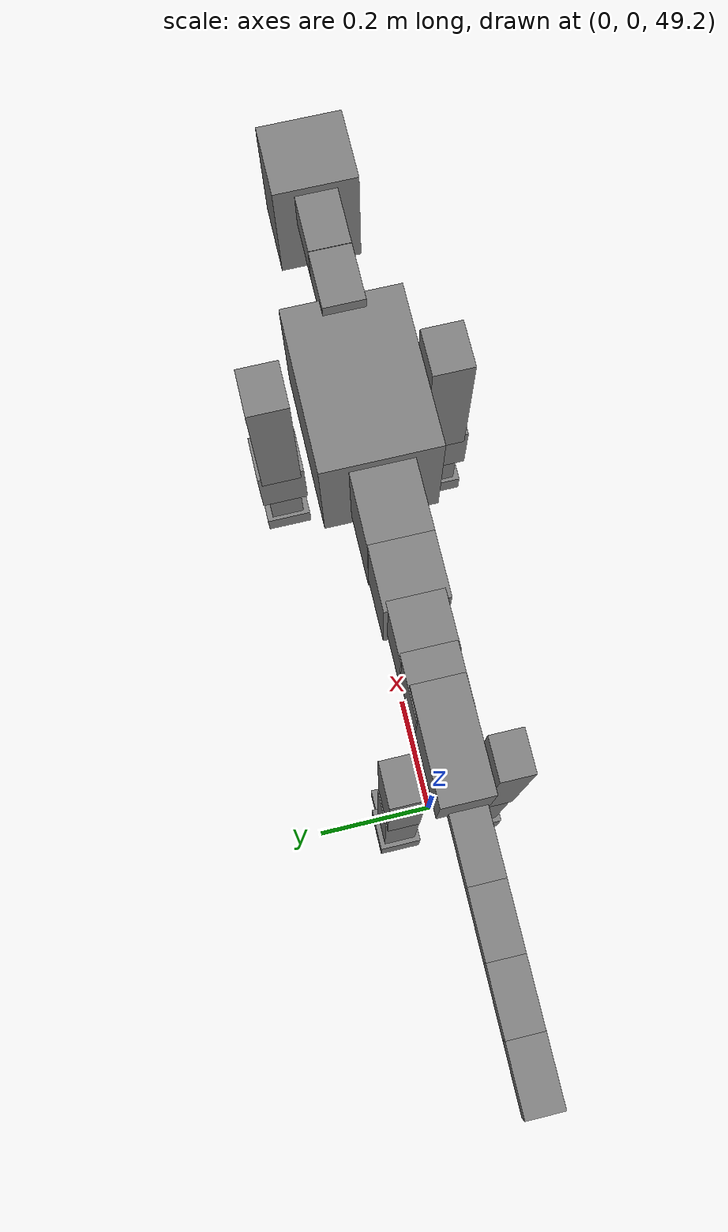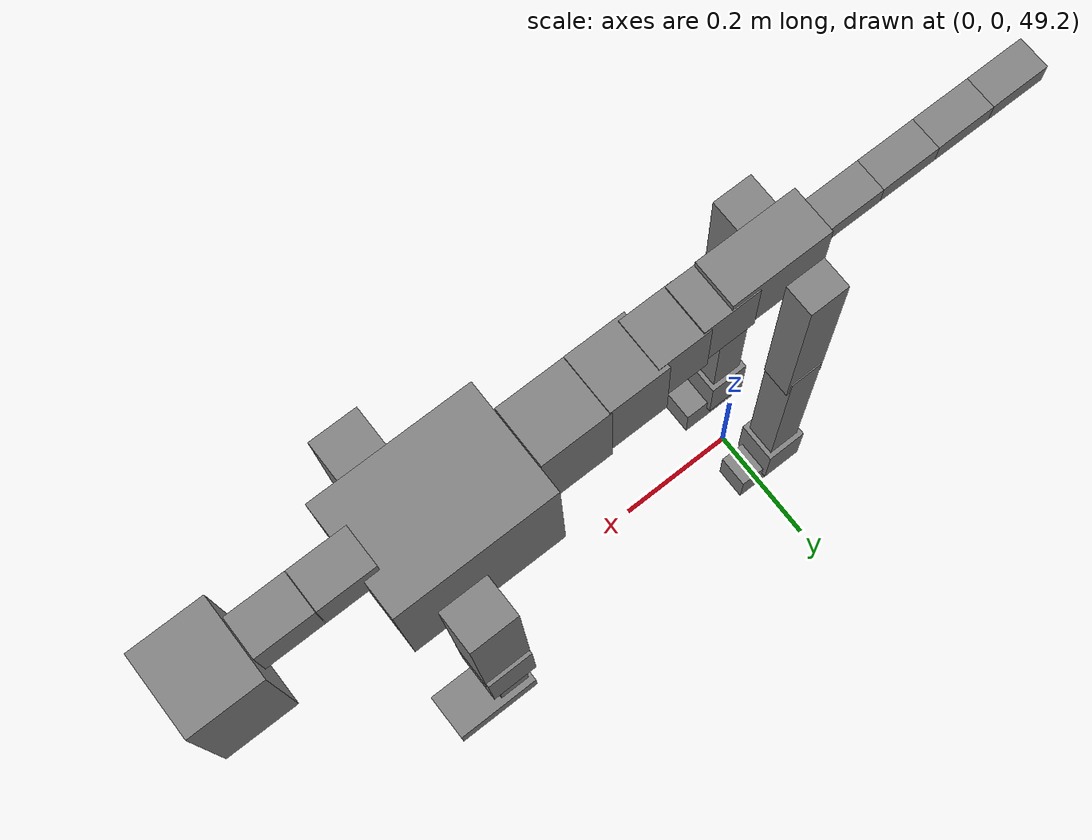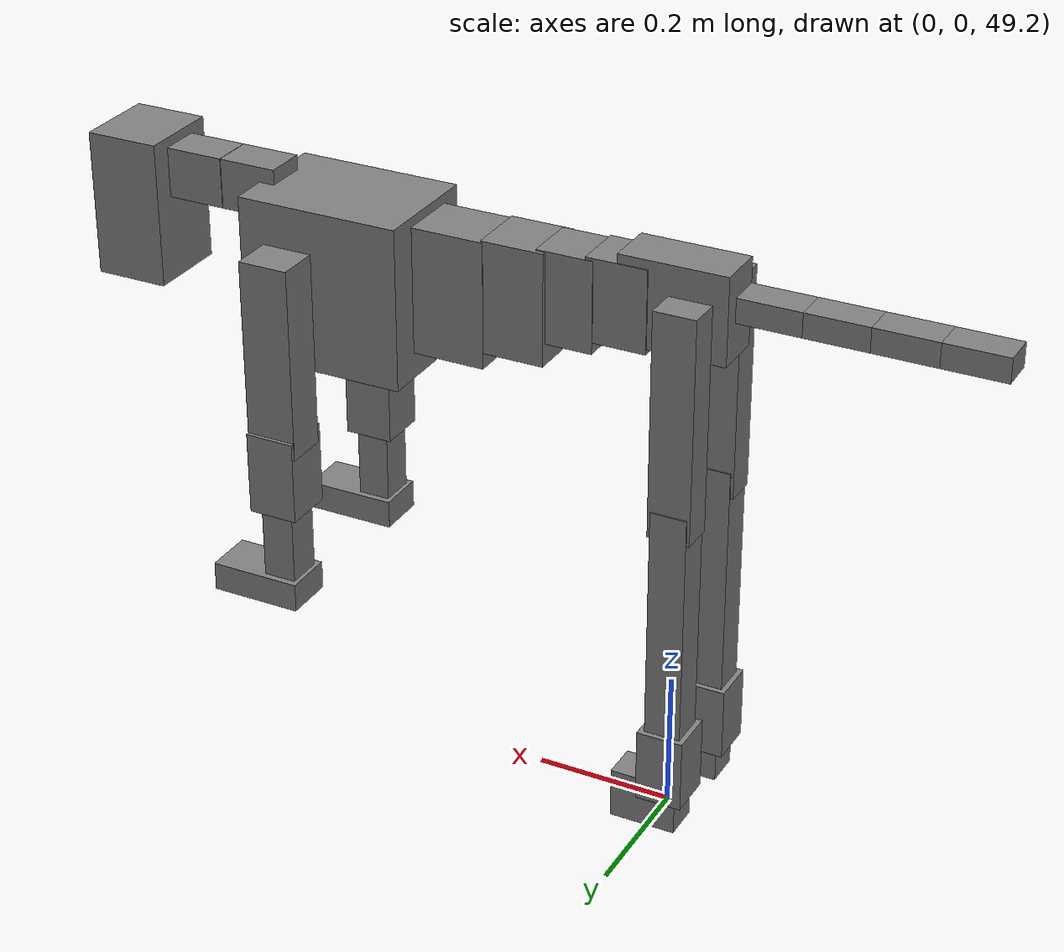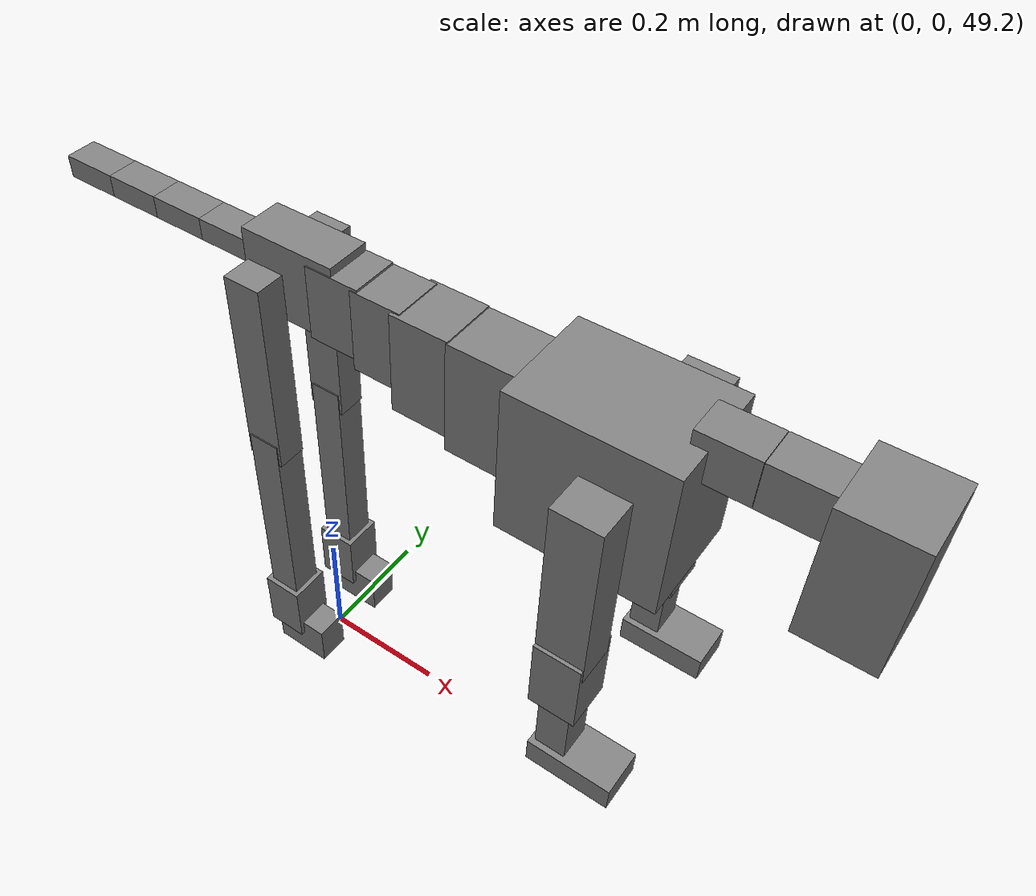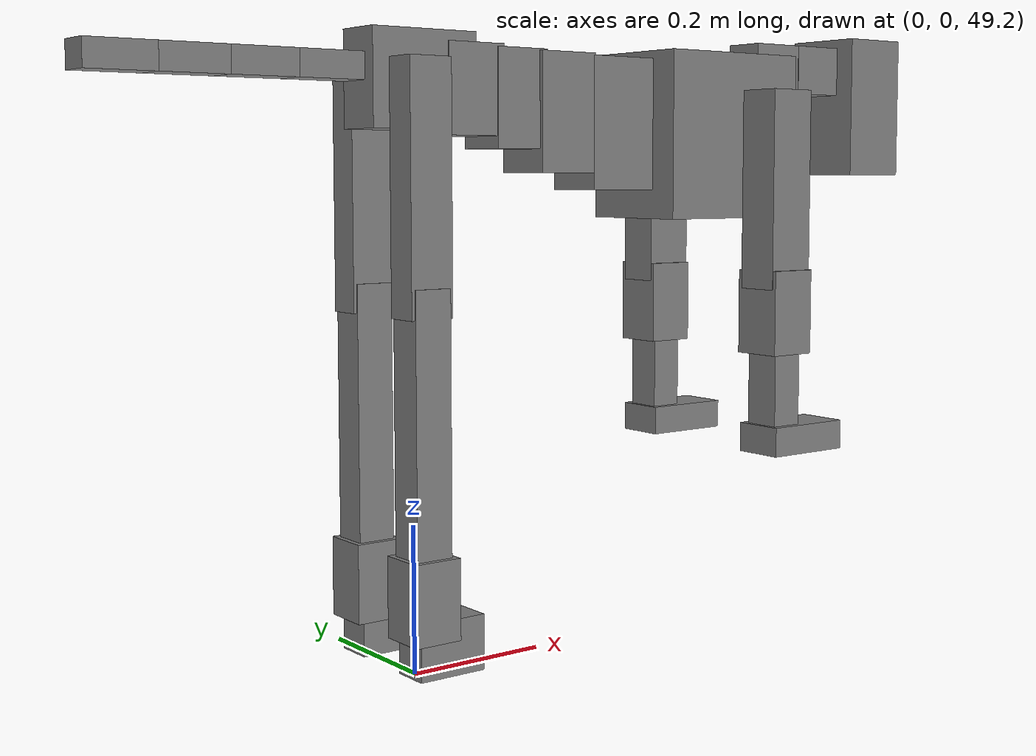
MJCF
<mujoco model="dog">

    <default>
        <joint armature="0.02" stiffness="1" damping="0.2" limited="true"/>
        <geom condim="3" friction="1 0.05 0.05" margin="0.01"/>
        <motor ctrllimited="true" ctrlrange="-1.0 1.0" forcelimited="true" gear="50"/>
    </default>

    <compiler inertiafromgeom="true" angle="radian"/>

    <option timestep="0.016" iterations="50" tolerance="1e-10" solver="Newton" jacobian="dense" cone="pyramidal"/>

    <size nconmax="20000" njmax="60000" nstack="5000000"/>
    <visual>
        <map force="0.1" zfar="30"/>
        <rgba haze="0.15 0.25 0.35 1"/>
        <quality shadowsize="2048"/>
        <global offwidth="800" offheight="800"/>
    </visual>

    <asset>
        <texture type="skybox" builtin="gradient" rgb1="0.3 0.5 0.7" rgb2="0 0 0" width="512" height="512"/>
        <texture name="texplane" type="2d" builtin="checker" rgb1=".2 .3 .4" rgb2=".1 0.15 0.2" width="512" height="512"
                 mark="cross" markrgb=".8 .8 .8"/>
        <texture name="texgeom" type="cube" builtin="flat" mark="cross" width="127" height="1278" rgb1="0.8 0.6 0.4"
                 rgb2="0.8 0.6 0.4" markrgb="1 1 1" random="0.01"/>

        <material name="matplane" reflectance="0.3" texture="texplane" texrepeat="1 1" texuniform="true"/>
        <material name="matgeom" texture="texgeom" texuniform="true" rgba="0.8 0.6 .4 1"/>
    </asset>

    <worldbody>
        <geom name="floor" pos="0 0 0" size="0 0 .25" type="plane" material="matplane" condim="3"/>

        <light directional="false" diffuse=".2 .2 .2" specular="0 0 0" pos="0 0 5" dir="0 0 -1" castshadow="false"/>
        <light mode="targetbodycom" target="torso" directional="false" diffuse=".8 .8 .8" specular="0.3 0.3 0.3"
               pos="0 0 4.0" dir="0 0 -1"/>

        <body name="root" pos="0 0 50">
            <freejoint name="root_1"/>
            <geom type="box" pos="0 0 -0.02" size="0.0774  0.0358  0.063" density="2030"/>

            <body name="spine1" pos="0.054 0 0">
                <joint name="spine1_y" axis="0 1 0" range="0 0.7" limited="true"/>
                <geom type="box" pos="0.02375 0 -0.03" size="0.04375  0.0375  0.05985" density="2030"/>

                <body name="spine2" pos="0.0612 0 0">
                    <joint name="spine2_y" axis="0 1 0" range="-0.15 0.15" limited="true"/>
                    <geom type="box" pos="0.03555  0  -0.04" size="0.04055  0.039  0.06615" density="2030"/>

                    <body name="spine3" pos="0.0730 0 0">
                        <joint name="spine3_y" axis="0 1 0" range="-0.15 0.15" limited="true"/>
                        <geom type="box" pos="0.03555  0  -0.057" size="0.04555  0.0445  0.081" density="2030"/>

                        <body name="spine4" pos="0.0780 0 0">
                            <joint name="spine4_y" axis="0 1 0" range="-0.15 0.15" limited="true"/>
                            <geom type="box" pos="0.05265  0  -0.07" size="0.05265  0.045  0.09135" density="2030"/>

                            <body name="torso" pos="0.1082 0 0">
                                <joint name="torso_y" axis="0 1 0" range="-0.15 0.15" limited="true"/>
                                <geom type="box" pos="0.11925  0  -0.085" size="0.11925  0.085  0.11745"
                                      density="2030"/>

                                <body name="neck1" pos="0.2160  0   0.0180">
                                    <joint name="neck1_y" axis="0 1 0" range="-1.2  -1" limited="true"/>
                                    <geom type="box" pos="0.0423  0  0" size="0.0423  0.03  0.036" density="2325"/>

                                    <body name="neck2" pos="0.0853  0  0">
                                        <joint name="neck2_y" axis="0 1 0" range="0.1  0" limited="true"/>
                                        <geom type="box" pos="0.0423  0  0" size="0.0423  0.03  0.036" density="2325"/>

                                        <body name="head" pos="0.0853  0  0">
                                            <joint name="head_y" axis="0 1 0" range="-0.3  -0.2" limited="true"/>
                                            <geom type="box" pos="0.0531  0  -0.055" size="0.0531  0.06  0.1044"
                                                  density="4030"/>

                                        </body>
                                    </body>
                                </body>

                                <body name="front_shoulder" pos="0.156  0   -0.0480">
                                    <joint name="front_shoulder_y" axis="0 1 0" range="-1 1.5" limited="true"/>
                                    <geom type="box" pos="0 0.13 -0.1138" size="0.0360  0.0308  0.1405" density="1158"/>
                                    <geom type="box" pos="0 -0.13 -0.1138" size="0.0360  0.0308  0.1405"
                                          density="1158"/>

                                    <body name="front_elbow" pos="0  0  -0.2277">
                                        <joint name="front_elbow_y" axis="0 1 0" range="-2 0" limited="true"/>
                                        <geom type="box" pos="0 0.13 -0.0598" size="0.0355  0.0363  0.0598"
                                              density="1081"/>
                                        <geom type="box" pos="0 -0.13 -0.0598" size="0.0355  0.0363  0.0598"
                                              density="1081"/>

                                        <body name="front_wrist" pos="0  0  -0.1196">
                                            <joint name="front_wrist_y" axis="0 1 0" range="-0.2 0" limited="true"/>
                                            <geom type="box" pos="0 0.13 -0.0589" size="0.0237  0.0264  0.0721"
                                                  density="1664"/>
                                            <geom type="box" pos="0 -0.13 -0.0589" size="0.0237  0.0264  0.0721"
                                                  density="1664"/>

                                            <body name="front_finger_end" pos="0  0  -0.1178">
                                                <joint name="front_finger_y" axis="0 1 0" range="-0.4 1"
                                                       limited="true"/>
                                                <geom type="box" pos="0.0360  0.13  -0.0058"
                                                      size="0.0659  0.0360  0.0208" density="1515"/>
                                                <geom type="box" pos="0.0360  -0.13  -0.0058"
                                                      size="0.0659  0.0360  0.0208" density="1515"/>

                                            </body>

                                        </body>
                                    </body>
                                </body>

                            </body>
                        </body>
                    </body>
                </body>
            </body>

            <body name="back_hip" pos="-0.03 0 -0.018">
                <joint name="back_hip_y" axis="0 1 0" range="-1.5 0.3" limited="true"/>
                <geom type="box" pos="0 0.07 -0.1399" size="0.0303  0.0238  0.1627" density="1154"/>
                <geom type="box" pos="0 -0.07 -0.1399" size="0.0303  0.0238  0.1627" density="1154"/>

                <body name="back_knee" pos="0  0  -0.2798">
                    <joint name="back_knee_y" axis="0 1 0" range="0 2.8" limited="true"/>
                    <geom type="box" pos="0 0.07 -0.1689" size="0.0260  0.0256  0.1845" density="1227"/>
                    <geom type="box" pos="0 -0.07 -0.1689" size="0.0260  0.0256  0.1845" density="1227"/>

                    <body name="back_ankle" pos="0  0  -0.3379">
                        <joint name="back_ankle_y" axis="0 1 0" range="-2.2 0" limited="true"/>
                        <geom type="box" pos="0 0.07 -0.0421" size="0.0335  0.0335  0.0534" density="1284"/>
                        <geom type="box" pos="0 -0.07 -0.0421" size="0.0335  0.0335  0.0534" density="1284"/>

                        <body name="back_toe_end" pos="0  0  -0.0842">
                            <joint name="back_toe_y" axis="0 1 0" range="-0.4 1" limited="true"/>
                            <geom type="box" pos="0.0262  0.07  -0.0218" size="0.0480  0.0262  0.0368" density="1515"/>
                            <geom type="box" pos="0.0262  -0.07  -0.0218" size="0.0480  0.0262  0.0368" density="1515"/>

                        </body>
                    </body>
                </body>
            </body>

            <body name="tail1" pos="-0.074 0 -0.006">
                <joint name="tail1_y" axis="0 1 0" range="-0.2 0.2" limited="true"/>
                <geom type="box" pos="-0.0536  0  0" size="0.045  0.025  0.0175" density="1587"/>

                <body name="tail2" pos="-0.09 0 0">
                    <joint name="tail2_y" axis="0 1 0" range="-0.2 0.2" limited="true"/>
                    <geom type="box" pos="-0.0536  0  0" size="0.045  0.025  0.0175" density="1587"/>

                    <body name="tail3" pos="-0.09 0 0">
                        <joint name="tail3_y" axis="0 1 0" range="-0.2 0.2" limited="true"/>
                        <geom type="box" pos="-0.0536  0  0" size="0.045  0.025  0.0175" density="1587"/>

                        <body name="tail4" pos="-0.09 0 0">
                            <joint name="tail4_y" axis="0 1 0" range="-0.2 0.2" limited="true"/>
                            <geom type="box" pos="-0.0536  0  0" size="0.045  0.025  0.0175" density="1587"/>

                        </body>
                    </body>
                </body>
            </body>
        </body>
    </worldbody>

    <actuator>
        <motor joint="spine1_y" forcerange="-150 150     "/>
        <motor joint="spine2_y" forcerange="-150 150     "/>
        <motor joint="spine3_y" forcerange="-150 150     "/>
        <motor joint="spine4_y" forcerange="-150 150     "/>
        <motor joint="torso_y" forcerange="-150 150     "/>
        <motor joint="neck1_y" forcerange="-100 100       "/>
        <motor joint="neck2_y" forcerange="-100 100       "/>
        <motor joint="head_y" forcerange="-150 150       "/>
        <motor joint="front_shoulder_y" forcerange="-184.51 120.88"/>
        <motor joint="front_elbow_y" forcerange="-192.49 171.75"/>
        <motor joint="front_wrist_y" forcerange="-144.79 66.05"/>
        <motor joint="front_finger_y" forcerange="-80.66 71.14"/>
        <motor joint="back_hip_y" forcerange="-262.54 254.51"/>
        <motor joint="back_knee_y" forcerange="-290.34 282.11"/>
        <motor joint="back_angle_y" forcerange="-240.24 196.05"/>
        <motor joint="back_toe_y" forcerange="-77.97 51.37"/>
        <motor joint="tail1_y" forcerange="-50 50     "/>
        <motor joint="tail2_y" forcerange="-50 50     "/>
        <motor joint="tail3_y" forcerange="-50 50     "/>
        <motor joint="tail4_y" forcerange="-50 50     "/>
    </actuator>
</mujoco>
